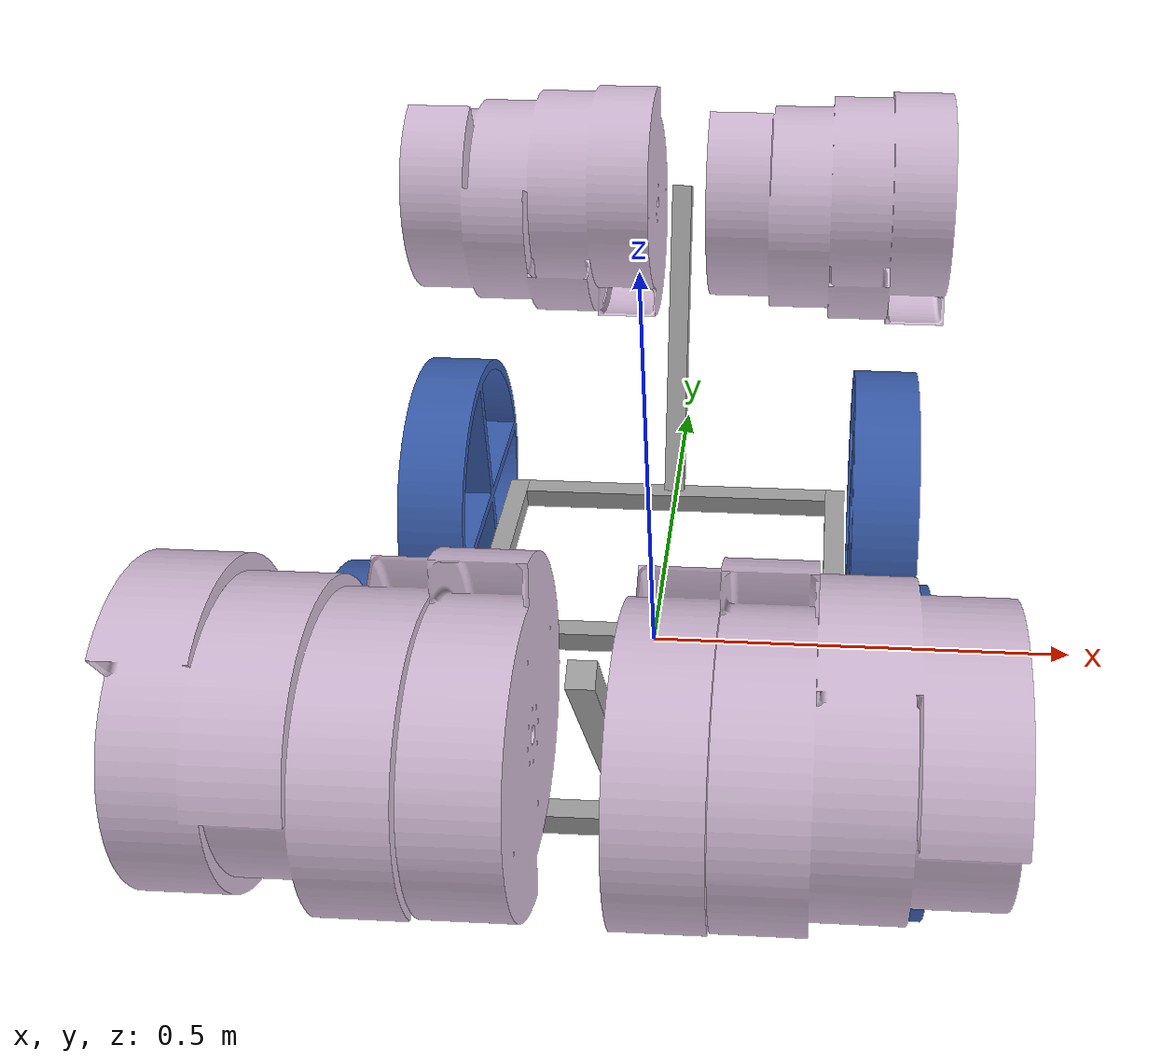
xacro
<?xml version="1.0"?>
<robot xmlns:xacro="http://www.ros.org/wiki/xacro" name="my-robot">
  <xacro:arg name="camera_name"   default="zed" />
  <xacro:arg name="camera_model"  default="zed" />
  <xacro:arg name="use_zed_localization" default="true" />
  <xacro:property name="default_mass" value="1e-09"/>
  <xacro:property name="default_inertia" value="1e-09"/>
  <xacro:property name="default_effort" value="10"/>
  <xacro:property name="default_velocity" value="10"/>
  <!-- Generated from robot.urdf -->
  <!-- Link frame_assembly -->
  <link name="frame_assembly">
    <inertial>
      <origin xyz="0 0 0" rpy="0 0 0"/>
      <mass value="${default_mass}"/>
      <inertia ixx="${default_inertia}" ixy="0" ixz="0" iyy="${default_inertia}" iyz="0" izz="${default_inertia}"/>
    </inertial>
    <!-- Part frame__length_0_40640000000000004_meter -->
    <visual>
      <origin xyz="2.77556e-17 -0.2921 -1.38778e-17" rpy="6.82962e-17 6.82962e-17 0"/>
      <geometry>
        <mesh filename="package://assets/frame__length_0_40640000000000004_meter.stl"/>
      </geometry>
      <material name="frame__length_0_40640000000000004_meter_material">
        <color rgba="0.647059 0.647059 0.647059 1"/>
      </material>
    </visual>
    <collision>
      <origin xyz="2.77556e-17 -0.2921 -1.38778e-17" rpy="6.82962e-17 6.82962e-17 0"/>
      <geometry>
        <mesh filename="package://assets/frame__length_0_40640000000000004_meter.stl"/>
      </geometry>
    </collision>
    <!-- Part frame__length_0_40640000000000004_meter_2 -->
    <visual>
      <origin xyz="2.77556e-17 0.2921 -1.38778e-17" rpy="6.82962e-17 6.82962e-17 0"/>
      <geometry>
        <mesh filename="package://assets/frame__length_0_40640000000000004_meter.stl"/>
      </geometry>
      <material name="frame__length_0_40640000000000004_meter_2_material">
        <color rgba="0.647059 0.647059 0.647059 1"/>
      </material>
    </visual>
    <collision>
      <origin xyz="2.77556e-17 0.2921 -1.38778e-17" rpy="6.82962e-17 6.82962e-17 0"/>
      <geometry>
        <mesh filename="package://assets/frame__length_0_40640000000000004_meter.stl"/>
      </geometry>
    </collision>
    <!-- Part frame__length_0_40640000000000004_meter_3 -->
    <visual>
      <origin xyz="0 0 0" rpy="0 -0 0"/>
      <geometry>
        <mesh filename="package://assets/frame__length_0_40640000000000004_meter.stl"/>
      </geometry>
      <material name="frame__length_0_40640000000000004_meter_3_material">
        <color rgba="0.647059 0.647059 0.647059 1"/>
      </material>
    </visual>
    <collision>
      <origin xyz="0 0 0" rpy="0 -0 0"/>
      <geometry>
        <mesh filename="package://assets/frame__length_0_40640000000000004_meter.stl"/>
      </geometry>
    </collision>
    <!-- Part frame__length_0_6096_meter -->
    <visual>
      <origin xyz="0.2159 1.1189e-16 -2.1684e-18" rpy="6.82962e-17 -0 -1.5708"/>
      <geometry>
        <mesh filename="package://assets/frame__length_0_6096_meter.stl"/>
      </geometry>
      <material name="frame__length_0_6096_meter_material">
        <color rgba="0.647059 0.647059 0.647059 1"/>
      </material>
    </visual>
    <collision>
      <origin xyz="0.2159 1.1189e-16 -2.1684e-18" rpy="6.82962e-17 -0 -1.5708"/>
      <geometry>
        <mesh filename="package://assets/frame__length_0_6096_meter.stl"/>
      </geometry>
    </collision>
    <!-- Part frame__length_0_6096_meter_2 -->
    <visual>
      <origin xyz="-0.2159 -1.09987e-16 -2.18865e-18" rpy="6.82962e-17 -0 1.5708"/>
      <geometry>
        <mesh filename="package://assets/frame__length_0_6096_meter.stl"/>
      </geometry>
      <material name="frame__length_0_6096_meter_2_material">
        <color rgba="0.647059 0.647059 0.647059 1"/>
      </material>
    </visual>
    <collision>
      <origin xyz="-0.2159 -1.09987e-16 -2.18865e-18" rpy="6.82962e-17 -0 1.5708"/>
      <geometry>
        <mesh filename="package://assets/frame__length_0_6096_meter.stl"/>
      </geometry>
    </collision>
  </link>

  <!-- Link wheel -->
  <link name="wheel">
    <inertial>
      <origin xyz="0 0 0" rpy="0 0 0"/>
      <mass value="${default_mass}"/>
      <inertia ixx="${default_inertia}" ixy="0" ixz="0" iyy="${default_inertia}" iyz="0" izz="${default_inertia}"/>
    </inertial>
    <visual>
      <origin xyz="0 1.38778e-17 -0.0396875" rpy="1.5708 1.5708 0"/>
      <geometry>
        <mesh filename="package://assets/wheel.stl"/>
      </geometry>
      <material name="wheel_material">
        <color rgba="0.231373 0.380392 0.705882 1"/>
      </material>
    </visual>
    <collision>
      <origin xyz="0 1.38778e-17 -0.0396875" rpy="1.5708 1.5708 0"/>
      <geometry>
        <mesh filename="package://assets/wheel.stl"/>
      </geometry>
    </collision>
  </link>

  <!-- Joint from frame_assembly to wheel -->
  <joint name="wheel_1" type="continuous">
    <origin xyz="0.23495 -0.2159 0.04445" rpy="-1.5708 -0 1.5708"/>
    <parent link="frame_assembly"/>
    <child link="wheel"/>
    <axis xyz="0 0 1"/>
    <limit effort="${default_effort}" velocity="${default_velocity}"/>
  </joint>

  <!-- Link wheel_2 -->
  <link name="wheel_2">
    <inertial>
      <origin xyz="0 0 0" rpy="0 0 0"/>
      <mass value="${default_mass}"/>
      <inertia ixx="${default_inertia}" ixy="0" ixz="0" iyy="${default_inertia}" iyz="0" izz="${default_inertia}"/>
    </inertial>
    <visual>
      <origin xyz="0 1.38778e-17 -0.0396875" rpy="1.5708 1.5708 0"/>
      <geometry>
        <mesh filename="package://assets/wheel.stl"/>
      </geometry>
      <material name="wheel_2_material">
        <color rgba="0.231373 0.380392 0.705882 1"/>
      </material>
    </visual>
    <collision>
      <origin xyz="0 1.38778e-17 -0.0396875" rpy="1.5708 1.5708 0"/>
      <geometry>
        <mesh filename="package://assets/wheel.stl"/>
      </geometry>
    </collision>
  </link>

  <!-- Joint from frame_assembly to wheel_2 -->
  <joint name="wheel_2" type="continuous">
    <origin xyz="0.23495 0.2159 0.0508" rpy="-1.5708 -0 1.5708"/>
    <parent link="frame_assembly"/>
    <child link="wheel_2"/>
    <axis xyz="0 0 1"/>
    <limit effort="${default_effort}" velocity="${default_velocity}"/>
  </joint>

  <!-- Link wheel_3 -->
  <link name="wheel_3">
    <inertial>
      <origin xyz="0 0 0" rpy="0 0 0"/>
      <mass value="${default_mass}"/>
      <inertia ixx="${default_inertia}" ixy="0" ixz="0" iyy="${default_inertia}" iyz="0" izz="${default_inertia}"/>
    </inertial>
    <visual>
      <origin xyz="0 -1.38778e-17 -0.0396875" rpy="-1.5708 -1.5708 0"/>
      <geometry>
        <mesh filename="package://assets/wheel.stl"/>
      </geometry>
      <material name="wheel_3_material">
        <color rgba="0.231373 0.380392 0.705882 1"/>
      </material>
    </visual>
    <collision>
      <origin xyz="0 -1.38778e-17 -0.0396875" rpy="-1.5708 -1.5708 0"/>
      <geometry>
        <mesh filename="package://assets/wheel.stl"/>
      </geometry>
    </collision>
  </link>

  <!-- Joint from frame_assembly to wheel_3 -->
  <joint name="wheel_3" type="continuous">
    <origin xyz="-0.23495 0.2159 0.0508" rpy="-1.5708 -0 -1.5708"/>
    <parent link="frame_assembly"/>
    <child link="wheel_3"/>
    <axis xyz="0 0 1"/>
    <limit effort="${default_effort}" velocity="${default_velocity}"/>
  </joint>

  <!-- Link wheel_4 -->
  <link name="wheel_4">
    <inertial>
      <origin xyz="0 0 0" rpy="0 0 0"/>
      <mass value="${default_mass}"/>
      <inertia ixx="${default_inertia}" ixy="0" ixz="0" iyy="${default_inertia}" iyz="0" izz="${default_inertia}"/>
    </inertial>
    <visual>
      <origin xyz="0 -1.38778e-17 -0.0396875" rpy="-1.5708 -1.5708 0"/>
      <geometry>
        <mesh filename="package://assets/wheel.stl"/>
      </geometry>
      <material name="wheel_4_material">
        <color rgba="0.231373 0.380392 0.705882 1"/>
      </material>
    </visual>
    <collision>
      <origin xyz="0 -1.38778e-17 -0.0396875" rpy="-1.5708 -1.5708 0"/>
      <geometry>
        <mesh filename="package://assets/wheel.stl"/>
      </geometry>
    </collision>
  </link>

  <!-- Joint from frame_assembly to wheel_4 -->
  <joint name="wheel_4" type="continuous">
    <origin xyz="-0.23495 -0.2159 0.0508" rpy="-1.5708 -0 -1.5708"/>
    <parent link="frame_assembly"/>
    <child link="wheel_4"/>
    <axis xyz="0 0 1"/>
    <limit effort="${default_effort}" velocity="${default_velocity}"/>
  </joint>

  <!-- Link frame__length_0_40640000000000004_meter -->
  <link name="frame__length_0_40640000000000004_meter">
    <inertial>
      <origin xyz="0 0 0" rpy="0 0 0"/>
      <mass value="${default_mass}"/>
      <inertia ixx="${default_inertia}" ixy="0" ixz="0" iyy="${default_inertia}" iyz="0" izz="${default_inertia}"/>
    </inertial>
    <visual>
      <origin xyz="0.173037 0 -1.73472e-18" rpy="-1.5708 -1.66039e-32 1.48742e-17"/>
      <geometry>
        <mesh filename="package://assets/frame__length_0_40640000000000004_meter.stl"/>
      </geometry>
      <material name="frame__length_0_40640000000000004_meter_4_material">
        <color rgba="0.647059 0.647059 0.647059 1"/>
      </material>
    </visual>
    <collision>
      <origin xyz="0.173037 0 -1.73472e-18" rpy="-1.5708 -1.66039e-32 1.48742e-17"/>
      <geometry>
        <mesh filename="package://assets/frame__length_0_40640000000000004_meter.stl"/>
      </geometry>
    </collision>
  </link>

  <!-- Link drum -->
  <link name="drum">
    <inertial>
      <origin xyz="0 0 0" rpy="0 0 0"/>
      <mass value="${default_mass}"/>
      <inertia ixx="${default_inertia}" ixy="0" ixz="0" iyy="${default_inertia}" iyz="0" izz="${default_inertia}"/>
    </inertial>
    <visual>
      <origin xyz="0 0 0.00254" rpy="-1.5708 -1.57526e-32 4.0637e-17"/>
      <geometry>
        <mesh filename="package://assets/drum.stl"/>
      </geometry>
      <material name="drum_material">
        <color rgba="0.85098 0.756863 0.866667 1"/>
      </material>
    </visual>
    <collision>
      <origin xyz="0 0 0.00254" rpy="-1.5708 -1.57526e-32 4.0637e-17"/>
      <geometry>
        <mesh filename="package://assets/drum.stl"/>
      </geometry>
    </collision>
  </link>

  <!-- Joint from frame__length_0_40640000000000004_meter to drum -->
  <joint name="drum_1" type="revolute">
    <origin xyz="0.357187 0.0476885 0.0381" rpy="1.51327e-16 -1.41588e-16 -1.5708"/>
    <parent link="frame__length_0_40640000000000004_meter"/>
    <child link="drum"/>
    <axis xyz="0 0 1"/>
    <limit effort="${default_effort}" velocity="${default_velocity}" lower="-3.141592653589793" upper="3.141592653589793"/>
  </joint>

  <!-- Link drum_2 -->
  <link name="drum_2">
    <inertial>
      <origin xyz="0 0 0" rpy="0 0 0"/>
      <mass value="${default_mass}"/>
      <inertia ixx="${default_inertia}" ixy="0" ixz="0" iyy="${default_inertia}" iyz="0" izz="${default_inertia}"/>
    </inertial>
    <visual>
      <origin xyz="-0.000210191 5.63205e-05 -0.31496" rpy="-1.5708 -2.95656e-16 1.48742e-17"/>
      <geometry>
        <mesh filename="package://assets/drum.stl"/>
      </geometry>
      <material name="drum_2_material">
        <color rgba="0.85098 0.756863 0.866667 1"/>
      </material>
    </visual>
    <collision>
      <origin xyz="-0.000210191 5.63205e-05 -0.31496" rpy="-1.5708 -2.95656e-16 1.48742e-17"/>
      <geometry>
        <mesh filename="package://assets/drum.stl"/>
      </geometry>
    </collision>
  </link>

  <!-- Joint from frame__length_0_40640000000000004_meter to drum_2 -->
  <joint name="drum_2" type="revolute">
    <origin xyz="0.357187 0.0476885 -0.0381" rpy="-7.85046e-17 4.12558e-32 -3.14159"/>
    <parent link="frame__length_0_40640000000000004_meter"/>
    <child link="drum_2"/>
    <axis xyz="0 0 1"/>
    <limit effort="${default_effort}" velocity="${default_velocity}" lower="-3.141592653589793" upper="3.141592653589793"/>
  </joint>

  <!-- Joint from frame_assembly to frame__length_0_40640000000000004_meter -->
  <joint name="arm_1" type="revolute">
    <origin xyz="3.1225e-17 -0.2921 0.0508" rpy="-1.5708 -1.0472 -1.5708"/>
    <parent link="frame_assembly"/>
    <child link="frame__length_0_40640000000000004_meter"/>
    <axis xyz="0 0 1"/>
    <limit effort="${default_effort}" velocity="${default_velocity}" lower="-3.141592653589793" upper="3.141592653589793"/>
  </joint>

  <!-- Link frame__length_0_40640000000000004_meter_2 -->
  <link name="frame__length_0_40640000000000004_meter_2">
    <inertial>
      <origin xyz="0 0 0" rpy="0 0 0"/>
      <mass value="${default_mass}"/>
      <inertia ixx="${default_inertia}" ixy="0" ixz="0" iyy="${default_inertia}" iyz="0" izz="${default_inertia}"/>
    </inertial>
    <visual>
      <origin xyz="0.173038 0 -1.73472e-18" rpy="-1.5708 2.95247e-34 -2.62968e-17"/>
      <geometry>
        <mesh filename="package://assets/frame__length_0_40640000000000004_meter.stl"/>
      </geometry>
      <material name="frame__length_0_40640000000000004_meter_5_material">
        <color rgba="0.647059 0.647059 0.647059 1"/>
      </material>
    </visual>
    <collision>
      <origin xyz="0.173038 0 -1.73472e-18" rpy="-1.5708 2.95247e-34 -2.62968e-17"/>
      <geometry>
        <mesh filename="package://assets/frame__length_0_40640000000000004_meter.stl"/>
      </geometry>
    </collision>
  </link>

  <!-- Link drum_3 -->
  <link name="drum_3">
    <inertial>
      <origin xyz="0 0 0" rpy="0 0 0"/>
      <mass value="${default_mass}"/>
      <inertia ixx="${default_inertia}" ixy="0" ixz="0" iyy="${default_inertia}" iyz="0" izz="${default_inertia}"/>
    </inertial>
    <visual>
      <origin xyz="0 0 0.00254" rpy="-1.5708 -1.08695e-32 -3.82533e-17"/>
      <geometry>
        <mesh filename="package://assets/drum.stl"/>
      </geometry>
      <material name="drum_3_material">
        <color rgba="0.85098 0.756863 0.866667 1"/>
      </material>
    </visual>
    <collision>
      <origin xyz="0 0 0.00254" rpy="-1.5708 -1.08695e-32 -3.82533e-17"/>
      <geometry>
        <mesh filename="package://assets/drum.stl"/>
      </geometry>
    </collision>
  </link>

  <!-- Joint from frame__length_0_40640000000000004_meter_2 to drum_3 -->
  <joint name="drum_3" type="revolute">
    <origin xyz="0.357187 0.0476885 0.0381" rpy="3.90337e-31 5.47109e-32 -3.14159"/>
    <parent link="frame__length_0_40640000000000004_meter_2"/>
    <child link="drum_3"/>
    <axis xyz="0 0 1"/>
    <limit effort="${default_effort}" velocity="${default_velocity}" lower="-3.141592653589793" upper="3.141592653589793"/>
  </joint>

  <!-- Link drum_4 -->
  <link name="drum_4">
    <inertial>
      <origin xyz="0 0 0" rpy="0 0 0"/>
      <mass value="${default_mass}"/>
      <inertia ixx="${default_inertia}" ixy="0" ixz="0" iyy="${default_inertia}" iyz="0" izz="${default_inertia}"/>
    </inertial>
    <visual>
      <origin xyz="-0.000210191 5.63205e-05 -0.31496" rpy="-1.5708 -2.95656e-16 -1.35584e-17"/>
      <geometry>
        <mesh filename="package://assets/drum.stl"/>
      </geometry>
      <material name="drum_4_material">
        <color rgba="0.85098 0.756863 0.866667 1"/>
      </material>
    </visual>
    <collision>
      <origin xyz="-0.000210191 5.63205e-05 -0.31496" rpy="-1.5708 -2.95656e-16 -1.35584e-17"/>
      <geometry>
        <mesh filename="package://assets/drum.stl"/>
      </geometry>
    </collision>
  </link>

  <!-- Joint from frame__length_0_40640000000000004_meter_2 to drum_4 -->
  <joint name="drum_4" type="revolute">
    <origin xyz="0.357188 0.0476885 -0.0381" rpy="6.51149e-31 -1.66571e-30 -8.18079e-17"/>
    <parent link="frame__length_0_40640000000000004_meter_2"/>
    <child link="drum_4"/>
    <axis xyz="0 0 1"/>
    <limit effort="${default_effort}" velocity="${default_velocity}" lower="-3.141592653589793" upper="3.141592653589793"/>
  </joint>

  <!-- Joint from frame_assembly to frame__length_0_40640000000000004_meter_2 -->
  <joint name="arm_2" type="revolute">
    <origin xyz="3.1225e-17 0.2921 0.0508" rpy="-1.5708 -1.0472 1.5708"/>
    <parent link="frame_assembly"/>
    <child link="frame__length_0_40640000000000004_meter_2"/>
    <axis xyz="0 0 1"/>
    <limit effort="${default_effort}" velocity="${default_velocity}" lower="-3.141592653589793" upper="3.141592653589793"/>
  </joint>
</robot>
